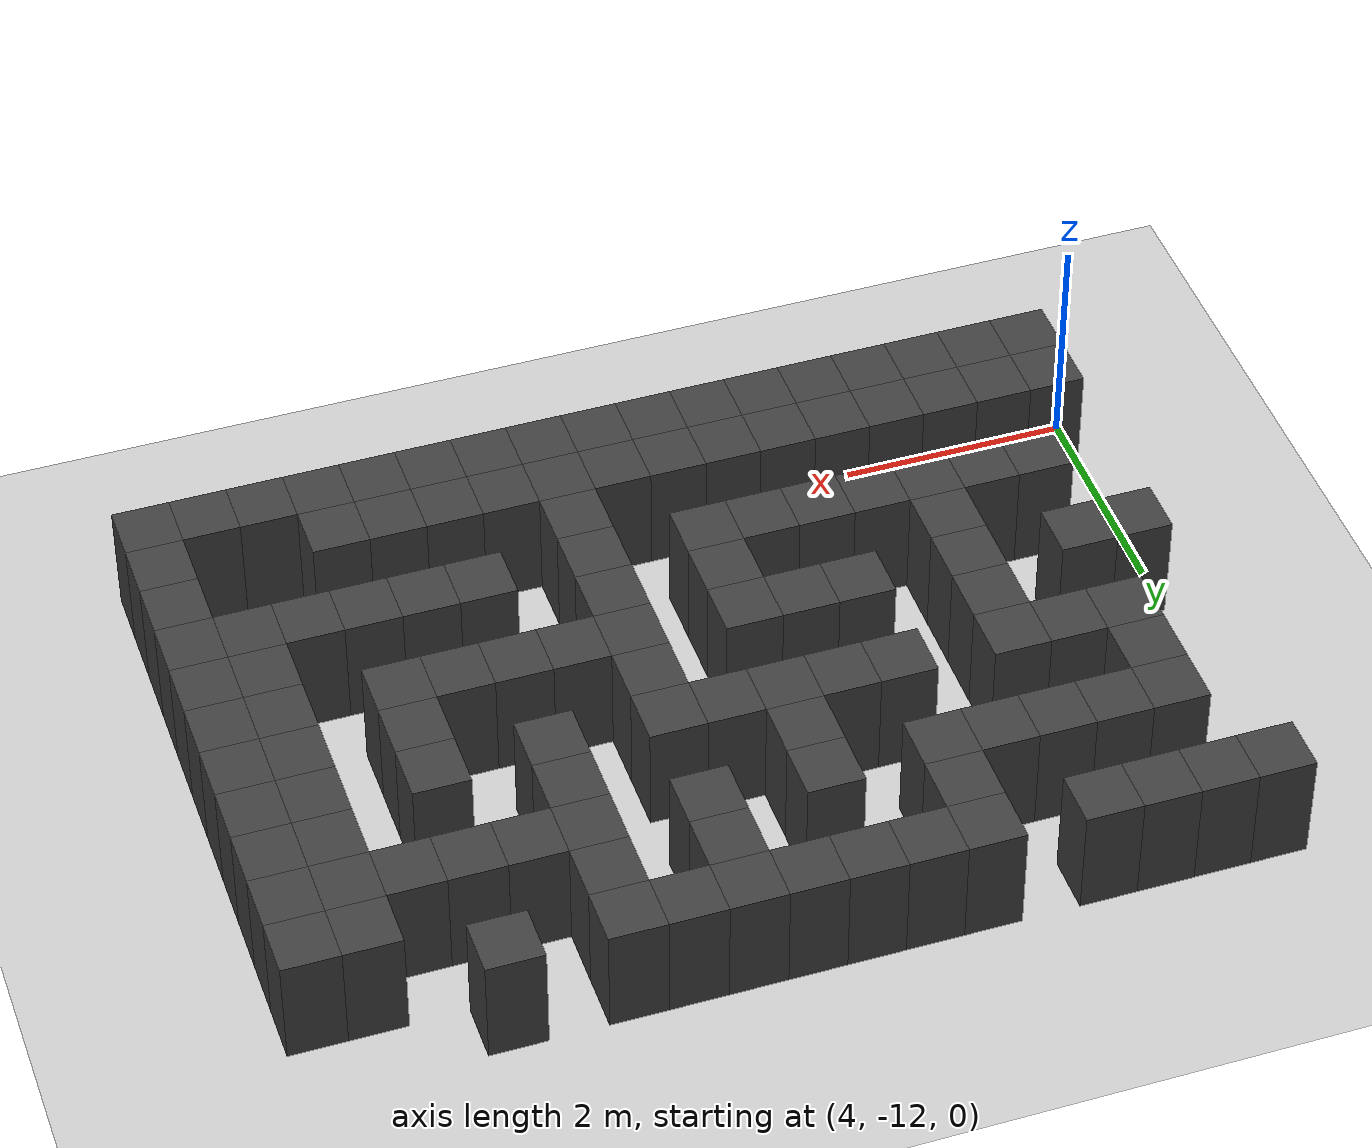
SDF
<sdf version="1.7">
 <world name="map_18914">
  <model name="ground_plane">
   <static>true</static>
   <link name="link">
    <collision name="collision">
     <geometry><plane><normal>0 0 1</normal><size>200 200</size></plane></geometry>
    </collision>
    <visual name="visual">
     <geometry><plane><normal>0 0 1</normal><size>200 200</size></plane></geometry>
     <material><ambient>0.8 0.8 0.8 1</ambient><diffuse>0.8 0.8 0.8 1</diffuse></material>
    </visual>
   </link>
  </model>
  <model name="maze_environment">
   <static>true</static>
   <link name="wall_990">
    <pose>4.250 -6.750 0.500 0 0 0</pose>
    <collision name="col"><geometry><box><size>0.5 0.5 1.0</size></box></geometry></collision>
    <visual name="vis">
     <geometry><box><size>0.5 0.5 1.0</size></box></geometry>
     <material><ambient>0.15 0.15 0.15 1</ambient><diffuse>0.25 0.25 0.25 1</diffuse></material>
    </visual>
   </link>
   <link name="wall_991">
    <pose>4.750 -6.750 0.500 0 0 0</pose>
    <collision name="col"><geometry><box><size>0.5 0.5 1.0</size></box></geometry></collision>
    <visual name="vis">
     <geometry><box><size>0.5 0.5 1.0</size></box></geometry>
     <material><ambient>0.15 0.15 0.15 1</ambient><diffuse>0.25 0.25 0.25 1</diffuse></material>
    </visual>
   </link>
   <link name="wall_992">
    <pose>5.250 -6.750 0.500 0 0 0</pose>
    <collision name="col"><geometry><box><size>0.5 0.5 1.0</size></box></geometry></collision>
    <visual name="vis">
     <geometry><box><size>0.5 0.5 1.0</size></box></geometry>
     <material><ambient>0.15 0.15 0.15 1</ambient><diffuse>0.25 0.25 0.25 1</diffuse></material>
    </visual>
   </link>
   <link name="wall_993">
    <pose>5.750 -6.750 0.500 0 0 0</pose>
    <collision name="col"><geometry><box><size>0.5 0.5 1.0</size></box></geometry></collision>
    <visual name="vis">
     <geometry><box><size>0.5 0.5 1.0</size></box></geometry>
     <material><ambient>0.15 0.15 0.15 1</ambient><diffuse>0.25 0.25 0.25 1</diffuse></material>
    </visual>
   </link>
   <link name="wall_994">
    <pose>6.750 -6.750 0.500 0 0 0</pose>
    <collision name="col"><geometry><box><size>0.5 0.5 1.0</size></box></geometry></collision>
    <visual name="vis">
     <geometry><box><size>0.5 0.5 1.0</size></box></geometry>
     <material><ambient>0.15 0.15 0.15 1</ambient><diffuse>0.25 0.25 0.25 1</diffuse></material>
    </visual>
   </link>
   <link name="wall_995">
    <pose>7.250 -6.750 0.500 0 0 0</pose>
    <collision name="col"><geometry><box><size>0.5 0.5 1.0</size></box></geometry></collision>
    <visual name="vis">
     <geometry><box><size>0.5 0.5 1.0</size></box></geometry>
     <material><ambient>0.15 0.15 0.15 1</ambient><diffuse>0.25 0.25 0.25 1</diffuse></material>
    </visual>
   </link>
   <link name="wall_996">
    <pose>7.750 -6.750 0.500 0 0 0</pose>
    <collision name="col"><geometry><box><size>0.5 0.5 1.0</size></box></geometry></collision>
    <visual name="vis">
     <geometry><box><size>0.5 0.5 1.0</size></box></geometry>
     <material><ambient>0.15 0.15 0.15 1</ambient><diffuse>0.25 0.25 0.25 1</diffuse></material>
    </visual>
   </link>
   <link name="wall_997">
    <pose>8.250 -6.750 0.500 0 0 0</pose>
    <collision name="col"><geometry><box><size>0.5 0.5 1.0</size></box></geometry></collision>
    <visual name="vis">
     <geometry><box><size>0.5 0.5 1.0</size></box></geometry>
     <material><ambient>0.15 0.15 0.15 1</ambient><diffuse>0.25 0.25 0.25 1</diffuse></material>
    </visual>
   </link>
   <link name="wall_998">
    <pose>8.750 -6.750 0.500 0 0 0</pose>
    <collision name="col"><geometry><box><size>0.5 0.5 1.0</size></box></geometry></collision>
    <visual name="vis">
     <geometry><box><size>0.5 0.5 1.0</size></box></geometry>
     <material><ambient>0.15 0.15 0.15 1</ambient><diffuse>0.25 0.25 0.25 1</diffuse></material>
    </visual>
   </link>
   <link name="wall_999">
    <pose>9.250 -6.750 0.500 0 0 0</pose>
    <collision name="col"><geometry><box><size>0.5 0.5 1.0</size></box></geometry></collision>
    <visual name="vis">
     <geometry><box><size>0.5 0.5 1.0</size></box></geometry>
     <material><ambient>0.15 0.15 0.15 1</ambient><diffuse>0.25 0.25 0.25 1</diffuse></material>
    </visual>
   </link>
   <link name="wall_1000">
    <pose>9.750 -6.750 0.500 0 0 0</pose>
    <collision name="col"><geometry><box><size>0.5 0.5 1.0</size></box></geometry></collision>
    <visual name="vis">
     <geometry><box><size>0.5 0.5 1.0</size></box></geometry>
     <material><ambient>0.15 0.15 0.15 1</ambient><diffuse>0.25 0.25 0.25 1</diffuse></material>
    </visual>
   </link>
   <link name="wall_1001">
    <pose>10.750 -6.750 0.500 0 0 0</pose>
    <collision name="col"><geometry><box><size>0.5 0.5 1.0</size></box></geometry></collision>
    <visual name="vis">
     <geometry><box><size>0.5 0.5 1.0</size></box></geometry>
     <material><ambient>0.15 0.15 0.15 1</ambient><diffuse>0.25 0.25 0.25 1</diffuse></material>
    </visual>
   </link>
   <link name="wall_1010">
    <pose>6.750 -7.250 0.500 0 0 0</pose>
    <collision name="col"><geometry><box><size>0.5 0.5 1.0</size></box></geometry></collision>
    <visual name="vis">
     <geometry><box><size>0.5 0.5 1.0</size></box></geometry>
     <material><ambient>0.15 0.15 0.15 1</ambient><diffuse>0.25 0.25 0.25 1</diffuse></material>
    </visual>
   </link>
   <link name="wall_1011">
    <pose>8.750 -7.250 0.500 0 0 0</pose>
    <collision name="col"><geometry><box><size>0.5 0.5 1.0</size></box></geometry></collision>
    <visual name="vis">
     <geometry><box><size>0.5 0.5 1.0</size></box></geometry>
     <material><ambient>0.15 0.15 0.15 1</ambient><diffuse>0.25 0.25 0.25 1</diffuse></material>
    </visual>
   </link>
   <link name="wall_1012">
    <pose>9.750 -7.250 0.500 0 0 0</pose>
    <collision name="col"><geometry><box><size>0.5 0.5 1.0</size></box></geometry></collision>
    <visual name="vis">
     <geometry><box><size>0.5 0.5 1.0</size></box></geometry>
     <material><ambient>0.15 0.15 0.15 1</ambient><diffuse>0.25 0.25 0.25 1</diffuse></material>
    </visual>
   </link>
   <link name="wall_1013">
    <pose>11.750 -7.250 0.500 0 0 0</pose>
    <collision name="col"><geometry><box><size>0.5 0.5 1.0</size></box></geometry></collision>
    <visual name="vis">
     <geometry><box><size>0.5 0.5 1.0</size></box></geometry>
     <material><ambient>0.15 0.15 0.15 1</ambient><diffuse>0.25 0.25 0.25 1</diffuse></material>
    </visual>
   </link>
   <link name="wall_1014">
    <pose>12.250 -7.250 0.500 0 0 0</pose>
    <collision name="col"><geometry><box><size>0.5 0.5 1.0</size></box></geometry></collision>
    <visual name="vis">
     <geometry><box><size>0.5 0.5 1.0</size></box></geometry>
     <material><ambient>0.15 0.15 0.15 1</ambient><diffuse>0.25 0.25 0.25 1</diffuse></material>
    </visual>
   </link>
   <link name="wall_1039">
    <pose>4.750 -7.750 0.500 0 0 0</pose>
    <collision name="col"><geometry><box><size>0.5 0.5 1.0</size></box></geometry></collision>
    <visual name="vis">
     <geometry><box><size>0.5 0.5 1.0</size></box></geometry>
     <material><ambient>0.15 0.15 0.15 1</ambient><diffuse>0.25 0.25 0.25 1</diffuse></material>
    </visual>
   </link>
   <link name="wall_1040">
    <pose>5.250 -7.750 0.500 0 0 0</pose>
    <collision name="col"><geometry><box><size>0.5 0.5 1.0</size></box></geometry></collision>
    <visual name="vis">
     <geometry><box><size>0.5 0.5 1.0</size></box></geometry>
     <material><ambient>0.15 0.15 0.15 1</ambient><diffuse>0.25 0.25 0.25 1</diffuse></material>
    </visual>
   </link>
   <link name="wall_1041">
    <pose>5.750 -7.750 0.500 0 0 0</pose>
    <collision name="col"><geometry><box><size>0.5 0.5 1.0</size></box></geometry></collision>
    <visual name="vis">
     <geometry><box><size>0.5 0.5 1.0</size></box></geometry>
     <material><ambient>0.15 0.15 0.15 1</ambient><diffuse>0.25 0.25 0.25 1</diffuse></material>
    </visual>
   </link>
   <link name="wall_1042">
    <pose>6.250 -7.750 0.500 0 0 0</pose>
    <collision name="col"><geometry><box><size>0.5 0.5 1.0</size></box></geometry></collision>
    <visual name="vis">
     <geometry><box><size>0.5 0.5 1.0</size></box></geometry>
     <material><ambient>0.15 0.15 0.15 1</ambient><diffuse>0.25 0.25 0.25 1</diffuse></material>
    </visual>
   </link>
   <link name="wall_1043">
    <pose>6.750 -7.750 0.500 0 0 0</pose>
    <collision name="col"><geometry><box><size>0.5 0.5 1.0</size></box></geometry></collision>
    <visual name="vis">
     <geometry><box><size>0.5 0.5 1.0</size></box></geometry>
     <material><ambient>0.15 0.15 0.15 1</ambient><diffuse>0.25 0.25 0.25 1</diffuse></material>
    </visual>
   </link>
   <link name="wall_1044">
    <pose>7.750 -7.750 0.500 0 0 0</pose>
    <collision name="col"><geometry><box><size>0.5 0.5 1.0</size></box></geometry></collision>
    <visual name="vis">
     <geometry><box><size>0.5 0.5 1.0</size></box></geometry>
     <material><ambient>0.15 0.15 0.15 1</ambient><diffuse>0.25 0.25 0.25 1</diffuse></material>
    </visual>
   </link>
   <link name="wall_1045">
    <pose>8.750 -7.750 0.500 0 0 0</pose>
    <collision name="col"><geometry><box><size>0.5 0.5 1.0</size></box></geometry></collision>
    <visual name="vis">
     <geometry><box><size>0.5 0.5 1.0</size></box></geometry>
     <material><ambient>0.15 0.15 0.15 1</ambient><diffuse>0.25 0.25 0.25 1</diffuse></material>
    </visual>
   </link>
   <link name="wall_1046">
    <pose>9.750 -7.750 0.500 0 0 0</pose>
    <collision name="col"><geometry><box><size>0.5 0.5 1.0</size></box></geometry></collision>
    <visual name="vis">
     <geometry><box><size>0.5 0.5 1.0</size></box></geometry>
     <material><ambient>0.15 0.15 0.15 1</ambient><diffuse>0.25 0.25 0.25 1</diffuse></material>
    </visual>
   </link>
   <link name="wall_1047">
    <pose>10.250 -7.750 0.500 0 0 0</pose>
    <collision name="col"><geometry><box><size>0.5 0.5 1.0</size></box></geometry></collision>
    <visual name="vis">
     <geometry><box><size>0.5 0.5 1.0</size></box></geometry>
     <material><ambient>0.15 0.15 0.15 1</ambient><diffuse>0.25 0.25 0.25 1</diffuse></material>
    </visual>
   </link>
   <link name="wall_1048">
    <pose>10.750 -7.750 0.500 0 0 0</pose>
    <collision name="col"><geometry><box><size>0.5 0.5 1.0</size></box></geometry></collision>
    <visual name="vis">
     <geometry><box><size>0.5 0.5 1.0</size></box></geometry>
     <material><ambient>0.15 0.15 0.15 1</ambient><diffuse>0.25 0.25 0.25 1</diffuse></material>
    </visual>
   </link>
   <link name="wall_1049">
    <pose>11.250 -7.750 0.500 0 0 0</pose>
    <collision name="col"><geometry><box><size>0.5 0.5 1.0</size></box></geometry></collision>
    <visual name="vis">
     <geometry><box><size>0.5 0.5 1.0</size></box></geometry>
     <material><ambient>0.15 0.15 0.15 1</ambient><diffuse>0.25 0.25 0.25 1</diffuse></material>
    </visual>
   </link>
   <link name="wall_1050">
    <pose>11.750 -7.750 0.500 0 0 0</pose>
    <collision name="col"><geometry><box><size>0.5 0.5 1.0</size></box></geometry></collision>
    <visual name="vis">
     <geometry><box><size>0.5 0.5 1.0</size></box></geometry>
     <material><ambient>0.15 0.15 0.15 1</ambient><diffuse>0.25 0.25 0.25 1</diffuse></material>
    </visual>
   </link>
   <link name="wall_1051">
    <pose>12.250 -7.750 0.500 0 0 0</pose>
    <collision name="col"><geometry><box><size>0.5 0.5 1.0</size></box></geometry></collision>
    <visual name="vis">
     <geometry><box><size>0.5 0.5 1.0</size></box></geometry>
     <material><ambient>0.15 0.15 0.15 1</ambient><diffuse>0.25 0.25 0.25 1</diffuse></material>
    </visual>
   </link>
   <link name="wall_1062">
    <pose>4.750 -8.250 0.500 0 0 0</pose>
    <collision name="col"><geometry><box><size>0.5 0.5 1.0</size></box></geometry></collision>
    <visual name="vis">
     <geometry><box><size>0.5 0.5 1.0</size></box></geometry>
     <material><ambient>0.15 0.15 0.15 1</ambient><diffuse>0.25 0.25 0.25 1</diffuse></material>
    </visual>
   </link>
   <link name="wall_1063">
    <pose>7.750 -8.250 0.500 0 0 0</pose>
    <collision name="col"><geometry><box><size>0.5 0.5 1.0</size></box></geometry></collision>
    <visual name="vis">
     <geometry><box><size>0.5 0.5 1.0</size></box></geometry>
     <material><ambient>0.15 0.15 0.15 1</ambient><diffuse>0.25 0.25 0.25 1</diffuse></material>
    </visual>
   </link>
   <link name="wall_1064">
    <pose>9.750 -8.250 0.500 0 0 0</pose>
    <collision name="col"><geometry><box><size>0.5 0.5 1.0</size></box></geometry></collision>
    <visual name="vis">
     <geometry><box><size>0.5 0.5 1.0</size></box></geometry>
     <material><ambient>0.15 0.15 0.15 1</ambient><diffuse>0.25 0.25 0.25 1</diffuse></material>
    </visual>
   </link>
   <link name="wall_1065">
    <pose>11.750 -8.250 0.500 0 0 0</pose>
    <collision name="col"><geometry><box><size>0.5 0.5 1.0</size></box></geometry></collision>
    <visual name="vis">
     <geometry><box><size>0.5 0.5 1.0</size></box></geometry>
     <material><ambient>0.15 0.15 0.15 1</ambient><diffuse>0.25 0.25 0.25 1</diffuse></material>
    </visual>
   </link>
   <link name="wall_1066">
    <pose>12.250 -8.250 0.500 0 0 0</pose>
    <collision name="col"><geometry><box><size>0.5 0.5 1.0</size></box></geometry></collision>
    <visual name="vis">
     <geometry><box><size>0.5 0.5 1.0</size></box></geometry>
     <material><ambient>0.15 0.15 0.15 1</ambient><diffuse>0.25 0.25 0.25 1</diffuse></material>
    </visual>
   </link>
   <link name="wall_1090">
    <pose>4.750 -8.750 0.500 0 0 0</pose>
    <collision name="col"><geometry><box><size>0.5 0.5 1.0</size></box></geometry></collision>
    <visual name="vis">
     <geometry><box><size>0.5 0.5 1.0</size></box></geometry>
     <material><ambient>0.15 0.15 0.15 1</ambient><diffuse>0.25 0.25 0.25 1</diffuse></material>
    </visual>
   </link>
   <link name="wall_1091">
    <pose>5.250 -8.750 0.500 0 0 0</pose>
    <collision name="col"><geometry><box><size>0.5 0.5 1.0</size></box></geometry></collision>
    <visual name="vis">
     <geometry><box><size>0.5 0.5 1.0</size></box></geometry>
     <material><ambient>0.15 0.15 0.15 1</ambient><diffuse>0.25 0.25 0.25 1</diffuse></material>
    </visual>
   </link>
   <link name="wall_1092">
    <pose>5.750 -8.750 0.500 0 0 0</pose>
    <collision name="col"><geometry><box><size>0.5 0.5 1.0</size></box></geometry></collision>
    <visual name="vis">
     <geometry><box><size>0.5 0.5 1.0</size></box></geometry>
     <material><ambient>0.15 0.15 0.15 1</ambient><diffuse>0.25 0.25 0.25 1</diffuse></material>
    </visual>
   </link>
   <link name="wall_1093">
    <pose>6.750 -8.750 0.500 0 0 0</pose>
    <collision name="col"><geometry><box><size>0.5 0.5 1.0</size></box></geometry></collision>
    <visual name="vis">
     <geometry><box><size>0.5 0.5 1.0</size></box></geometry>
     <material><ambient>0.15 0.15 0.15 1</ambient><diffuse>0.25 0.25 0.25 1</diffuse></material>
    </visual>
   </link>
   <link name="wall_1094">
    <pose>7.250 -8.750 0.500 0 0 0</pose>
    <collision name="col"><geometry><box><size>0.5 0.5 1.0</size></box></geometry></collision>
    <visual name="vis">
     <geometry><box><size>0.5 0.5 1.0</size></box></geometry>
     <material><ambient>0.15 0.15 0.15 1</ambient><diffuse>0.25 0.25 0.25 1</diffuse></material>
    </visual>
   </link>
   <link name="wall_1095">
    <pose>7.750 -8.750 0.500 0 0 0</pose>
    <collision name="col"><geometry><box><size>0.5 0.5 1.0</size></box></geometry></collision>
    <visual name="vis">
     <geometry><box><size>0.5 0.5 1.0</size></box></geometry>
     <material><ambient>0.15 0.15 0.15 1</ambient><diffuse>0.25 0.25 0.25 1</diffuse></material>
    </visual>
   </link>
   <link name="wall_1096">
    <pose>8.250 -8.750 0.500 0 0 0</pose>
    <collision name="col"><geometry><box><size>0.5 0.5 1.0</size></box></geometry></collision>
    <visual name="vis">
     <geometry><box><size>0.5 0.5 1.0</size></box></geometry>
     <material><ambient>0.15 0.15 0.15 1</ambient><diffuse>0.25 0.25 0.25 1</diffuse></material>
    </visual>
   </link>
   <link name="wall_1097">
    <pose>8.750 -8.750 0.500 0 0 0</pose>
    <collision name="col"><geometry><box><size>0.5 0.5 1.0</size></box></geometry></collision>
    <visual name="vis">
     <geometry><box><size>0.5 0.5 1.0</size></box></geometry>
     <material><ambient>0.15 0.15 0.15 1</ambient><diffuse>0.25 0.25 0.25 1</diffuse></material>
    </visual>
   </link>
   <link name="wall_1098">
    <pose>9.750 -8.750 0.500 0 0 0</pose>
    <collision name="col"><geometry><box><size>0.5 0.5 1.0</size></box></geometry></collision>
    <visual name="vis">
     <geometry><box><size>0.5 0.5 1.0</size></box></geometry>
     <material><ambient>0.15 0.15 0.15 1</ambient><diffuse>0.25 0.25 0.25 1</diffuse></material>
    </visual>
   </link>
   <link name="wall_1099">
    <pose>10.750 -8.750 0.500 0 0 0</pose>
    <collision name="col"><geometry><box><size>0.5 0.5 1.0</size></box></geometry></collision>
    <visual name="vis">
     <geometry><box><size>0.5 0.5 1.0</size></box></geometry>
     <material><ambient>0.15 0.15 0.15 1</ambient><diffuse>0.25 0.25 0.25 1</diffuse></material>
    </visual>
   </link>
   <link name="wall_1100">
    <pose>11.750 -8.750 0.500 0 0 0</pose>
    <collision name="col"><geometry><box><size>0.5 0.5 1.0</size></box></geometry></collision>
    <visual name="vis">
     <geometry><box><size>0.5 0.5 1.0</size></box></geometry>
     <material><ambient>0.15 0.15 0.15 1</ambient><diffuse>0.25 0.25 0.25 1</diffuse></material>
    </visual>
   </link>
   <link name="wall_1101">
    <pose>12.250 -8.750 0.500 0 0 0</pose>
    <collision name="col"><geometry><box><size>0.5 0.5 1.0</size></box></geometry></collision>
    <visual name="vis">
     <geometry><box><size>0.5 0.5 1.0</size></box></geometry>
     <material><ambient>0.15 0.15 0.15 1</ambient><diffuse>0.25 0.25 0.25 1</diffuse></material>
    </visual>
   </link>
   <link name="wall_1113">
    <pose>5.750 -9.250 0.500 0 0 0</pose>
    <collision name="col"><geometry><box><size>0.5 0.5 1.0</size></box></geometry></collision>
    <visual name="vis">
     <geometry><box><size>0.5 0.5 1.0</size></box></geometry>
     <material><ambient>0.15 0.15 0.15 1</ambient><diffuse>0.25 0.25 0.25 1</diffuse></material>
    </visual>
   </link>
   <link name="wall_1114">
    <pose>8.750 -9.250 0.500 0 0 0</pose>
    <collision name="col"><geometry><box><size>0.5 0.5 1.0</size></box></geometry></collision>
    <visual name="vis">
     <geometry><box><size>0.5 0.5 1.0</size></box></geometry>
     <material><ambient>0.15 0.15 0.15 1</ambient><diffuse>0.25 0.25 0.25 1</diffuse></material>
    </visual>
   </link>
   <link name="wall_1115">
    <pose>10.750 -9.250 0.500 0 0 0</pose>
    <collision name="col"><geometry><box><size>0.5 0.5 1.0</size></box></geometry></collision>
    <visual name="vis">
     <geometry><box><size>0.5 0.5 1.0</size></box></geometry>
     <material><ambient>0.15 0.15 0.15 1</ambient><diffuse>0.25 0.25 0.25 1</diffuse></material>
    </visual>
   </link>
   <link name="wall_1116">
    <pose>11.750 -9.250 0.500 0 0 0</pose>
    <collision name="col"><geometry><box><size>0.5 0.5 1.0</size></box></geometry></collision>
    <visual name="vis">
     <geometry><box><size>0.5 0.5 1.0</size></box></geometry>
     <material><ambient>0.15 0.15 0.15 1</ambient><diffuse>0.25 0.25 0.25 1</diffuse></material>
    </visual>
   </link>
   <link name="wall_1117">
    <pose>12.250 -9.250 0.500 0 0 0</pose>
    <collision name="col"><geometry><box><size>0.5 0.5 1.0</size></box></geometry></collision>
    <visual name="vis">
     <geometry><box><size>0.5 0.5 1.0</size></box></geometry>
     <material><ambient>0.15 0.15 0.15 1</ambient><diffuse>0.25 0.25 0.25 1</diffuse></material>
    </visual>
   </link>
   <link name="wall_1140">
    <pose>4.250 -9.750 0.500 0 0 0</pose>
    <collision name="col"><geometry><box><size>0.5 0.5 1.0</size></box></geometry></collision>
    <visual name="vis">
     <geometry><box><size>0.5 0.5 1.0</size></box></geometry>
     <material><ambient>0.15 0.15 0.15 1</ambient><diffuse>0.25 0.25 0.25 1</diffuse></material>
    </visual>
   </link>
   <link name="wall_1141">
    <pose>4.750 -9.750 0.500 0 0 0</pose>
    <collision name="col"><geometry><box><size>0.5 0.5 1.0</size></box></geometry></collision>
    <visual name="vis">
     <geometry><box><size>0.5 0.5 1.0</size></box></geometry>
     <material><ambient>0.15 0.15 0.15 1</ambient><diffuse>0.25 0.25 0.25 1</diffuse></material>
    </visual>
   </link>
   <link name="wall_1142">
    <pose>5.750 -9.750 0.500 0 0 0</pose>
    <collision name="col"><geometry><box><size>0.5 0.5 1.0</size></box></geometry></collision>
    <visual name="vis">
     <geometry><box><size>0.5 0.5 1.0</size></box></geometry>
     <material><ambient>0.15 0.15 0.15 1</ambient><diffuse>0.25 0.25 0.25 1</diffuse></material>
    </visual>
   </link>
   <link name="wall_1143">
    <pose>6.750 -9.750 0.500 0 0 0</pose>
    <collision name="col"><geometry><box><size>0.5 0.5 1.0</size></box></geometry></collision>
    <visual name="vis">
     <geometry><box><size>0.5 0.5 1.0</size></box></geometry>
     <material><ambient>0.15 0.15 0.15 1</ambient><diffuse>0.25 0.25 0.25 1</diffuse></material>
    </visual>
   </link>
   <link name="wall_1144">
    <pose>7.250 -9.750 0.500 0 0 0</pose>
    <collision name="col"><geometry><box><size>0.5 0.5 1.0</size></box></geometry></collision>
    <visual name="vis">
     <geometry><box><size>0.5 0.5 1.0</size></box></geometry>
     <material><ambient>0.15 0.15 0.15 1</ambient><diffuse>0.25 0.25 0.25 1</diffuse></material>
    </visual>
   </link>
   <link name="wall_1145">
    <pose>7.750 -9.750 0.500 0 0 0</pose>
    <collision name="col"><geometry><box><size>0.5 0.5 1.0</size></box></geometry></collision>
    <visual name="vis">
     <geometry><box><size>0.5 0.5 1.0</size></box></geometry>
     <material><ambient>0.15 0.15 0.15 1</ambient><diffuse>0.25 0.25 0.25 1</diffuse></material>
    </visual>
   </link>
   <link name="wall_1146">
    <pose>8.750 -9.750 0.500 0 0 0</pose>
    <collision name="col"><geometry><box><size>0.5 0.5 1.0</size></box></geometry></collision>
    <visual name="vis">
     <geometry><box><size>0.5 0.5 1.0</size></box></geometry>
     <material><ambient>0.15 0.15 0.15 1</ambient><diffuse>0.25 0.25 0.25 1</diffuse></material>
    </visual>
   </link>
   <link name="wall_1147">
    <pose>9.250 -9.750 0.500 0 0 0</pose>
    <collision name="col"><geometry><box><size>0.5 0.5 1.0</size></box></geometry></collision>
    <visual name="vis">
     <geometry><box><size>0.5 0.5 1.0</size></box></geometry>
     <material><ambient>0.15 0.15 0.15 1</ambient><diffuse>0.25 0.25 0.25 1</diffuse></material>
    </visual>
   </link>
   <link name="wall_1148">
    <pose>9.750 -9.750 0.500 0 0 0</pose>
    <collision name="col"><geometry><box><size>0.5 0.5 1.0</size></box></geometry></collision>
    <visual name="vis">
     <geometry><box><size>0.5 0.5 1.0</size></box></geometry>
     <material><ambient>0.15 0.15 0.15 1</ambient><diffuse>0.25 0.25 0.25 1</diffuse></material>
    </visual>
   </link>
   <link name="wall_1149">
    <pose>10.250 -9.750 0.500 0 0 0</pose>
    <collision name="col"><geometry><box><size>0.5 0.5 1.0</size></box></geometry></collision>
    <visual name="vis">
     <geometry><box><size>0.5 0.5 1.0</size></box></geometry>
     <material><ambient>0.15 0.15 0.15 1</ambient><diffuse>0.25 0.25 0.25 1</diffuse></material>
    </visual>
   </link>
   <link name="wall_1150">
    <pose>10.750 -9.750 0.500 0 0 0</pose>
    <collision name="col"><geometry><box><size>0.5 0.5 1.0</size></box></geometry></collision>
    <visual name="vis">
     <geometry><box><size>0.5 0.5 1.0</size></box></geometry>
     <material><ambient>0.15 0.15 0.15 1</ambient><diffuse>0.25 0.25 0.25 1</diffuse></material>
    </visual>
   </link>
   <link name="wall_1151">
    <pose>11.750 -9.750 0.500 0 0 0</pose>
    <collision name="col"><geometry><box><size>0.5 0.5 1.0</size></box></geometry></collision>
    <visual name="vis">
     <geometry><box><size>0.5 0.5 1.0</size></box></geometry>
     <material><ambient>0.15 0.15 0.15 1</ambient><diffuse>0.25 0.25 0.25 1</diffuse></material>
    </visual>
   </link>
   <link name="wall_1152">
    <pose>12.250 -9.750 0.500 0 0 0</pose>
    <collision name="col"><geometry><box><size>0.5 0.5 1.0</size></box></geometry></collision>
    <visual name="vis">
     <geometry><box><size>0.5 0.5 1.0</size></box></geometry>
     <material><ambient>0.15 0.15 0.15 1</ambient><diffuse>0.25 0.25 0.25 1</diffuse></material>
    </visual>
   </link>
   <link name="wall_1163">
    <pose>5.750 -10.250 0.500 0 0 0</pose>
    <collision name="col"><geometry><box><size>0.5 0.5 1.0</size></box></geometry></collision>
    <visual name="vis">
     <geometry><box><size>0.5 0.5 1.0</size></box></geometry>
     <material><ambient>0.15 0.15 0.15 1</ambient><diffuse>0.25 0.25 0.25 1</diffuse></material>
    </visual>
   </link>
   <link name="wall_1164">
    <pose>7.750 -10.250 0.500 0 0 0</pose>
    <collision name="col"><geometry><box><size>0.5 0.5 1.0</size></box></geometry></collision>
    <visual name="vis">
     <geometry><box><size>0.5 0.5 1.0</size></box></geometry>
     <material><ambient>0.15 0.15 0.15 1</ambient><diffuse>0.25 0.25 0.25 1</diffuse></material>
    </visual>
   </link>
   <link name="wall_1165">
    <pose>8.750 -10.250 0.500 0 0 0</pose>
    <collision name="col"><geometry><box><size>0.5 0.5 1.0</size></box></geometry></collision>
    <visual name="vis">
     <geometry><box><size>0.5 0.5 1.0</size></box></geometry>
     <material><ambient>0.15 0.15 0.15 1</ambient><diffuse>0.25 0.25 0.25 1</diffuse></material>
    </visual>
   </link>
   <link name="wall_1166">
    <pose>11.750 -10.250 0.500 0 0 0</pose>
    <collision name="col"><geometry><box><size>0.5 0.5 1.0</size></box></geometry></collision>
    <visual name="vis">
     <geometry><box><size>0.5 0.5 1.0</size></box></geometry>
     <material><ambient>0.15 0.15 0.15 1</ambient><diffuse>0.25 0.25 0.25 1</diffuse></material>
    </visual>
   </link>
   <link name="wall_1167">
    <pose>12.250 -10.250 0.500 0 0 0</pose>
    <collision name="col"><geometry><box><size>0.5 0.5 1.0</size></box></geometry></collision>
    <visual name="vis">
     <geometry><box><size>0.5 0.5 1.0</size></box></geometry>
     <material><ambient>0.15 0.15 0.15 1</ambient><diffuse>0.25 0.25 0.25 1</diffuse></material>
    </visual>
   </link>
   <link name="wall_1193">
    <pose>4.750 -10.750 0.500 0 0 0</pose>
    <collision name="col"><geometry><box><size>0.5 0.5 1.0</size></box></geometry></collision>
    <visual name="vis">
     <geometry><box><size>0.5 0.5 1.0</size></box></geometry>
     <material><ambient>0.15 0.15 0.15 1</ambient><diffuse>0.25 0.25 0.25 1</diffuse></material>
    </visual>
   </link>
   <link name="wall_1194">
    <pose>5.250 -10.750 0.500 0 0 0</pose>
    <collision name="col"><geometry><box><size>0.5 0.5 1.0</size></box></geometry></collision>
    <visual name="vis">
     <geometry><box><size>0.5 0.5 1.0</size></box></geometry>
     <material><ambient>0.15 0.15 0.15 1</ambient><diffuse>0.25 0.25 0.25 1</diffuse></material>
    </visual>
   </link>
   <link name="wall_1195">
    <pose>5.750 -10.750 0.500 0 0 0</pose>
    <collision name="col"><geometry><box><size>0.5 0.5 1.0</size></box></geometry></collision>
    <visual name="vis">
     <geometry><box><size>0.5 0.5 1.0</size></box></geometry>
     <material><ambient>0.15 0.15 0.15 1</ambient><diffuse>0.25 0.25 0.25 1</diffuse></material>
    </visual>
   </link>
   <link name="wall_1196">
    <pose>6.250 -10.750 0.500 0 0 0</pose>
    <collision name="col"><geometry><box><size>0.5 0.5 1.0</size></box></geometry></collision>
    <visual name="vis">
     <geometry><box><size>0.5 0.5 1.0</size></box></geometry>
     <material><ambient>0.15 0.15 0.15 1</ambient><diffuse>0.25 0.25 0.25 1</diffuse></material>
    </visual>
   </link>
   <link name="wall_1197">
    <pose>6.750 -10.750 0.500 0 0 0</pose>
    <collision name="col"><geometry><box><size>0.5 0.5 1.0</size></box></geometry></collision>
    <visual name="vis">
     <geometry><box><size>0.5 0.5 1.0</size></box></geometry>
     <material><ambient>0.15 0.15 0.15 1</ambient><diffuse>0.25 0.25 0.25 1</diffuse></material>
    </visual>
   </link>
   <link name="wall_1198">
    <pose>7.250 -10.750 0.500 0 0 0</pose>
    <collision name="col"><geometry><box><size>0.5 0.5 1.0</size></box></geometry></collision>
    <visual name="vis">
     <geometry><box><size>0.5 0.5 1.0</size></box></geometry>
     <material><ambient>0.15 0.15 0.15 1</ambient><diffuse>0.25 0.25 0.25 1</diffuse></material>
    </visual>
   </link>
   <link name="wall_1199">
    <pose>7.750 -10.750 0.500 0 0 0</pose>
    <collision name="col"><geometry><box><size>0.5 0.5 1.0</size></box></geometry></collision>
    <visual name="vis">
     <geometry><box><size>0.5 0.5 1.0</size></box></geometry>
     <material><ambient>0.15 0.15 0.15 1</ambient><diffuse>0.25 0.25 0.25 1</diffuse></material>
    </visual>
   </link>
   <link name="wall_1200">
    <pose>8.750 -10.750 0.500 0 0 0</pose>
    <collision name="col"><geometry><box><size>0.5 0.5 1.0</size></box></geometry></collision>
    <visual name="vis">
     <geometry><box><size>0.5 0.5 1.0</size></box></geometry>
     <material><ambient>0.15 0.15 0.15 1</ambient><diffuse>0.25 0.25 0.25 1</diffuse></material>
    </visual>
   </link>
   <link name="wall_1201">
    <pose>9.750 -10.750 0.500 0 0 0</pose>
    <collision name="col"><geometry><box><size>0.5 0.5 1.0</size></box></geometry></collision>
    <visual name="vis">
     <geometry><box><size>0.5 0.5 1.0</size></box></geometry>
     <material><ambient>0.15 0.15 0.15 1</ambient><diffuse>0.25 0.25 0.25 1</diffuse></material>
    </visual>
   </link>
   <link name="wall_1202">
    <pose>10.250 -10.750 0.500 0 0 0</pose>
    <collision name="col"><geometry><box><size>0.5 0.5 1.0</size></box></geometry></collision>
    <visual name="vis">
     <geometry><box><size>0.5 0.5 1.0</size></box></geometry>
     <material><ambient>0.15 0.15 0.15 1</ambient><diffuse>0.25 0.25 0.25 1</diffuse></material>
    </visual>
   </link>
   <link name="wall_1203">
    <pose>10.750 -10.750 0.500 0 0 0</pose>
    <collision name="col"><geometry><box><size>0.5 0.5 1.0</size></box></geometry></collision>
    <visual name="vis">
     <geometry><box><size>0.5 0.5 1.0</size></box></geometry>
     <material><ambient>0.15 0.15 0.15 1</ambient><diffuse>0.25 0.25 0.25 1</diffuse></material>
    </visual>
   </link>
   <link name="wall_1204">
    <pose>11.250 -10.750 0.500 0 0 0</pose>
    <collision name="col"><geometry><box><size>0.5 0.5 1.0</size></box></geometry></collision>
    <visual name="vis">
     <geometry><box><size>0.5 0.5 1.0</size></box></geometry>
     <material><ambient>0.15 0.15 0.15 1</ambient><diffuse>0.25 0.25 0.25 1</diffuse></material>
    </visual>
   </link>
   <link name="wall_1205">
    <pose>11.750 -10.750 0.500 0 0 0</pose>
    <collision name="col"><geometry><box><size>0.5 0.5 1.0</size></box></geometry></collision>
    <visual name="vis">
     <geometry><box><size>0.5 0.5 1.0</size></box></geometry>
     <material><ambient>0.15 0.15 0.15 1</ambient><diffuse>0.25 0.25 0.25 1</diffuse></material>
    </visual>
   </link>
   <link name="wall_1206">
    <pose>12.250 -10.750 0.500 0 0 0</pose>
    <collision name="col"><geometry><box><size>0.5 0.5 1.0</size></box></geometry></collision>
    <visual name="vis">
     <geometry><box><size>0.5 0.5 1.0</size></box></geometry>
     <material><ambient>0.15 0.15 0.15 1</ambient><diffuse>0.25 0.25 0.25 1</diffuse></material>
    </visual>
   </link>
   <link name="wall_1211">
    <pose>8.750 -11.250 0.500 0 0 0</pose>
    <collision name="col"><geometry><box><size>0.5 0.5 1.0</size></box></geometry></collision>
    <visual name="vis">
     <geometry><box><size>0.5 0.5 1.0</size></box></geometry>
     <material><ambient>0.15 0.15 0.15 1</ambient><diffuse>0.25 0.25 0.25 1</diffuse></material>
    </visual>
   </link>
   <link name="wall_1212">
    <pose>12.250 -11.250 0.500 0 0 0</pose>
    <collision name="col"><geometry><box><size>0.5 0.5 1.0</size></box></geometry></collision>
    <visual name="vis">
     <geometry><box><size>0.5 0.5 1.0</size></box></geometry>
     <material><ambient>0.15 0.15 0.15 1</ambient><diffuse>0.25 0.25 0.25 1</diffuse></material>
    </visual>
   </link>
   <link name="wall_1246">
    <pose>4.250 -11.750 0.500 0 0 0</pose>
    <collision name="col"><geometry><box><size>0.5 0.5 1.0</size></box></geometry></collision>
    <visual name="vis">
     <geometry><box><size>0.5 0.5 1.0</size></box></geometry>
     <material><ambient>0.15 0.15 0.15 1</ambient><diffuse>0.25 0.25 0.25 1</diffuse></material>
    </visual>
   </link>
   <link name="wall_1247">
    <pose>4.750 -11.750 0.500 0 0 0</pose>
    <collision name="col"><geometry><box><size>0.5 0.5 1.0</size></box></geometry></collision>
    <visual name="vis">
     <geometry><box><size>0.5 0.5 1.0</size></box></geometry>
     <material><ambient>0.15 0.15 0.15 1</ambient><diffuse>0.25 0.25 0.25 1</diffuse></material>
    </visual>
   </link>
   <link name="wall_1248">
    <pose>5.250 -11.750 0.500 0 0 0</pose>
    <collision name="col"><geometry><box><size>0.5 0.5 1.0</size></box></geometry></collision>
    <visual name="vis">
     <geometry><box><size>0.5 0.5 1.0</size></box></geometry>
     <material><ambient>0.15 0.15 0.15 1</ambient><diffuse>0.25 0.25 0.25 1</diffuse></material>
    </visual>
   </link>
   <link name="wall_1249">
    <pose>5.750 -11.750 0.500 0 0 0</pose>
    <collision name="col"><geometry><box><size>0.5 0.5 1.0</size></box></geometry></collision>
    <visual name="vis">
     <geometry><box><size>0.5 0.5 1.0</size></box></geometry>
     <material><ambient>0.15 0.15 0.15 1</ambient><diffuse>0.25 0.25 0.25 1</diffuse></material>
    </visual>
   </link>
   <link name="wall_1250">
    <pose>6.250 -11.750 0.500 0 0 0</pose>
    <collision name="col"><geometry><box><size>0.5 0.5 1.0</size></box></geometry></collision>
    <visual name="vis">
     <geometry><box><size>0.5 0.5 1.0</size></box></geometry>
     <material><ambient>0.15 0.15 0.15 1</ambient><diffuse>0.25 0.25 0.25 1</diffuse></material>
    </visual>
   </link>
   <link name="wall_1251">
    <pose>6.750 -11.750 0.500 0 0 0</pose>
    <collision name="col"><geometry><box><size>0.5 0.5 1.0</size></box></geometry></collision>
    <visual name="vis">
     <geometry><box><size>0.5 0.5 1.0</size></box></geometry>
     <material><ambient>0.15 0.15 0.15 1</ambient><diffuse>0.25 0.25 0.25 1</diffuse></material>
    </visual>
   </link>
   <link name="wall_1252">
    <pose>7.250 -11.750 0.500 0 0 0</pose>
    <collision name="col"><geometry><box><size>0.5 0.5 1.0</size></box></geometry></collision>
    <visual name="vis">
     <geometry><box><size>0.5 0.5 1.0</size></box></geometry>
     <material><ambient>0.15 0.15 0.15 1</ambient><diffuse>0.25 0.25 0.25 1</diffuse></material>
    </visual>
   </link>
   <link name="wall_1253">
    <pose>7.750 -11.750 0.500 0 0 0</pose>
    <collision name="col"><geometry><box><size>0.5 0.5 1.0</size></box></geometry></collision>
    <visual name="vis">
     <geometry><box><size>0.5 0.5 1.0</size></box></geometry>
     <material><ambient>0.15 0.15 0.15 1</ambient><diffuse>0.25 0.25 0.25 1</diffuse></material>
    </visual>
   </link>
   <link name="wall_1254">
    <pose>8.250 -11.750 0.500 0 0 0</pose>
    <collision name="col"><geometry><box><size>0.5 0.5 1.0</size></box></geometry></collision>
    <visual name="vis">
     <geometry><box><size>0.5 0.5 1.0</size></box></geometry>
     <material><ambient>0.15 0.15 0.15 1</ambient><diffuse>0.25 0.25 0.25 1</diffuse></material>
    </visual>
   </link>
   <link name="wall_1255">
    <pose>8.750 -11.750 0.500 0 0 0</pose>
    <collision name="col"><geometry><box><size>0.5 0.5 1.0</size></box></geometry></collision>
    <visual name="vis">
     <geometry><box><size>0.5 0.5 1.0</size></box></geometry>
     <material><ambient>0.15 0.15 0.15 1</ambient><diffuse>0.25 0.25 0.25 1</diffuse></material>
    </visual>
   </link>
   <link name="wall_1256">
    <pose>9.250 -11.750 0.500 0 0 0</pose>
    <collision name="col"><geometry><box><size>0.5 0.5 1.0</size></box></geometry></collision>
    <visual name="vis">
     <geometry><box><size>0.5 0.5 1.0</size></box></geometry>
     <material><ambient>0.15 0.15 0.15 1</ambient><diffuse>0.25 0.25 0.25 1</diffuse></material>
    </visual>
   </link>
   <link name="wall_1257">
    <pose>9.750 -11.750 0.500 0 0 0</pose>
    <collision name="col"><geometry><box><size>0.5 0.5 1.0</size></box></geometry></collision>
    <visual name="vis">
     <geometry><box><size>0.5 0.5 1.0</size></box></geometry>
     <material><ambient>0.15 0.15 0.15 1</ambient><diffuse>0.25 0.25 0.25 1</diffuse></material>
    </visual>
   </link>
   <link name="wall_1258">
    <pose>10.250 -11.750 0.500 0 0 0</pose>
    <collision name="col"><geometry><box><size>0.5 0.5 1.0</size></box></geometry></collision>
    <visual name="vis">
     <geometry><box><size>0.5 0.5 1.0</size></box></geometry>
     <material><ambient>0.15 0.15 0.15 1</ambient><diffuse>0.25 0.25 0.25 1</diffuse></material>
    </visual>
   </link>
   <link name="wall_1259">
    <pose>10.750 -11.750 0.500 0 0 0</pose>
    <collision name="col"><geometry><box><size>0.5 0.5 1.0</size></box></geometry></collision>
    <visual name="vis">
     <geometry><box><size>0.5 0.5 1.0</size></box></geometry>
     <material><ambient>0.15 0.15 0.15 1</ambient><diffuse>0.25 0.25 0.25 1</diffuse></material>
    </visual>
   </link>
   <link name="wall_1260">
    <pose>12.250 -11.750 0.500 0 0 0</pose>
    <collision name="col"><geometry><box><size>0.5 0.5 1.0</size></box></geometry></collision>
    <visual name="vis">
     <geometry><box><size>0.5 0.5 1.0</size></box></geometry>
     <material><ambient>0.15 0.15 0.15 1</ambient><diffuse>0.25 0.25 0.25 1</diffuse></material>
    </visual>
   </link>
   <link name="wall_1294">
    <pose>4.250 -12.250 0.500 0 0 0</pose>
    <collision name="col"><geometry><box><size>0.5 0.5 1.0</size></box></geometry></collision>
    <visual name="vis">
     <geometry><box><size>0.5 0.5 1.0</size></box></geometry>
     <material><ambient>0.15 0.15 0.15 1</ambient><diffuse>0.25 0.25 0.25 1</diffuse></material>
    </visual>
   </link>
   <link name="wall_1295">
    <pose>4.750 -12.250 0.500 0 0 0</pose>
    <collision name="col"><geometry><box><size>0.5 0.5 1.0</size></box></geometry></collision>
    <visual name="vis">
     <geometry><box><size>0.5 0.5 1.0</size></box></geometry>
     <material><ambient>0.15 0.15 0.15 1</ambient><diffuse>0.25 0.25 0.25 1</diffuse></material>
    </visual>
   </link>
   <link name="wall_1296">
    <pose>5.250 -12.250 0.500 0 0 0</pose>
    <collision name="col"><geometry><box><size>0.5 0.5 1.0</size></box></geometry></collision>
    <visual name="vis">
     <geometry><box><size>0.5 0.5 1.0</size></box></geometry>
     <material><ambient>0.15 0.15 0.15 1</ambient><diffuse>0.25 0.25 0.25 1</diffuse></material>
    </visual>
   </link>
   <link name="wall_1297">
    <pose>5.750 -12.250 0.500 0 0 0</pose>
    <collision name="col"><geometry><box><size>0.5 0.5 1.0</size></box></geometry></collision>
    <visual name="vis">
     <geometry><box><size>0.5 0.5 1.0</size></box></geometry>
     <material><ambient>0.15 0.15 0.15 1</ambient><diffuse>0.25 0.25 0.25 1</diffuse></material>
    </visual>
   </link>
   <link name="wall_1298">
    <pose>6.250 -12.250 0.500 0 0 0</pose>
    <collision name="col"><geometry><box><size>0.5 0.5 1.0</size></box></geometry></collision>
    <visual name="vis">
     <geometry><box><size>0.5 0.5 1.0</size></box></geometry>
     <material><ambient>0.15 0.15 0.15 1</ambient><diffuse>0.25 0.25 0.25 1</diffuse></material>
    </visual>
   </link>
   <link name="wall_1299">
    <pose>6.750 -12.250 0.500 0 0 0</pose>
    <collision name="col"><geometry><box><size>0.5 0.5 1.0</size></box></geometry></collision>
    <visual name="vis">
     <geometry><box><size>0.5 0.5 1.0</size></box></geometry>
     <material><ambient>0.15 0.15 0.15 1</ambient><diffuse>0.25 0.25 0.25 1</diffuse></material>
    </visual>
   </link>
   <link name="wall_1300">
    <pose>7.250 -12.250 0.500 0 0 0</pose>
    <collision name="col"><geometry><box><size>0.5 0.5 1.0</size></box></geometry></collision>
    <visual name="vis">
     <geometry><box><size>0.5 0.5 1.0</size></box></geometry>
     <material><ambient>0.15 0.15 0.15 1</ambient><diffuse>0.25 0.25 0.25 1</diffuse></material>
    </visual>
   </link>
   <link name="wall_1301">
    <pose>7.750 -12.250 0.500 0 0 0</pose>
    <collision name="col"><geometry><box><size>0.5 0.5 1.0</size></box></geometry></collision>
    <visual name="vis">
     <geometry><box><size>0.5 0.5 1.0</size></box></geometry>
     <material><ambient>0.15 0.15 0.15 1</ambient><diffuse>0.25 0.25 0.25 1</diffuse></material>
    </visual>
   </link>
   <link name="wall_1302">
    <pose>8.250 -12.250 0.500 0 0 0</pose>
    <collision name="col"><geometry><box><size>0.5 0.5 1.0</size></box></geometry></collision>
    <visual name="vis">
     <geometry><box><size>0.5 0.5 1.0</size></box></geometry>
     <material><ambient>0.15 0.15 0.15 1</ambient><diffuse>0.25 0.25 0.25 1</diffuse></material>
    </visual>
   </link>
   <link name="wall_1303">
    <pose>8.750 -12.250 0.500 0 0 0</pose>
    <collision name="col"><geometry><box><size>0.5 0.5 1.0</size></box></geometry></collision>
    <visual name="vis">
     <geometry><box><size>0.5 0.5 1.0</size></box></geometry>
     <material><ambient>0.15 0.15 0.15 1</ambient><diffuse>0.25 0.25 0.25 1</diffuse></material>
    </visual>
   </link>
   <link name="wall_1304">
    <pose>9.250 -12.250 0.500 0 0 0</pose>
    <collision name="col"><geometry><box><size>0.5 0.5 1.0</size></box></geometry></collision>
    <visual name="vis">
     <geometry><box><size>0.5 0.5 1.0</size></box></geometry>
     <material><ambient>0.15 0.15 0.15 1</ambient><diffuse>0.25 0.25 0.25 1</diffuse></material>
    </visual>
   </link>
   <link name="wall_1305">
    <pose>9.750 -12.250 0.500 0 0 0</pose>
    <collision name="col"><geometry><box><size>0.5 0.5 1.0</size></box></geometry></collision>
    <visual name="vis">
     <geometry><box><size>0.5 0.5 1.0</size></box></geometry>
     <material><ambient>0.15 0.15 0.15 1</ambient><diffuse>0.25 0.25 0.25 1</diffuse></material>
    </visual>
   </link>
   <link name="wall_1306">
    <pose>10.250 -12.250 0.500 0 0 0</pose>
    <collision name="col"><geometry><box><size>0.5 0.5 1.0</size></box></geometry></collision>
    <visual name="vis">
     <geometry><box><size>0.5 0.5 1.0</size></box></geometry>
     <material><ambient>0.15 0.15 0.15 1</ambient><diffuse>0.25 0.25 0.25 1</diffuse></material>
    </visual>
   </link>
   <link name="wall_1307">
    <pose>10.750 -12.250 0.500 0 0 0</pose>
    <collision name="col"><geometry><box><size>0.5 0.5 1.0</size></box></geometry></collision>
    <visual name="vis">
     <geometry><box><size>0.5 0.5 1.0</size></box></geometry>
     <material><ambient>0.15 0.15 0.15 1</ambient><diffuse>0.25 0.25 0.25 1</diffuse></material>
    </visual>
   </link>
   <link name="wall_1308">
    <pose>11.250 -12.250 0.500 0 0 0</pose>
    <collision name="col"><geometry><box><size>0.5 0.5 1.0</size></box></geometry></collision>
    <visual name="vis">
     <geometry><box><size>0.5 0.5 1.0</size></box></geometry>
     <material><ambient>0.15 0.15 0.15 1</ambient><diffuse>0.25 0.25 0.25 1</diffuse></material>
    </visual>
   </link>
   <link name="wall_1309">
    <pose>11.750 -12.250 0.500 0 0 0</pose>
    <collision name="col"><geometry><box><size>0.5 0.5 1.0</size></box></geometry></collision>
    <visual name="vis">
     <geometry><box><size>0.5 0.5 1.0</size></box></geometry>
     <material><ambient>0.15 0.15 0.15 1</ambient><diffuse>0.25 0.25 0.25 1</diffuse></material>
    </visual>
   </link>
   <link name="wall_1310">
    <pose>12.250 -12.250 0.500 0 0 0</pose>
    <collision name="col"><geometry><box><size>0.5 0.5 1.0</size></box></geometry></collision>
    <visual name="vis">
     <geometry><box><size>0.5 0.5 1.0</size></box></geometry>
     <material><ambient>0.15 0.15 0.15 1</ambient><diffuse>0.25 0.25 0.25 1</diffuse></material>
    </visual>
   </link>
   <link name="goal_zone">
    <pose>11.750 -11.750 0.005 0 0 0</pose>
    <visual name="vis">
     <geometry><box><size>0.45 0.45 0.01</size></box></geometry>
     <material>
      <ambient>1.0 0.0 0.0 1</ambient>
      <diffuse>1.0 0.0 0.0 1</diffuse>
      <emissive>0.60 0.00 0.00 1</emissive>
     </material>
    </visual>
   </link>
  </model>
 </world>
</sdf>
